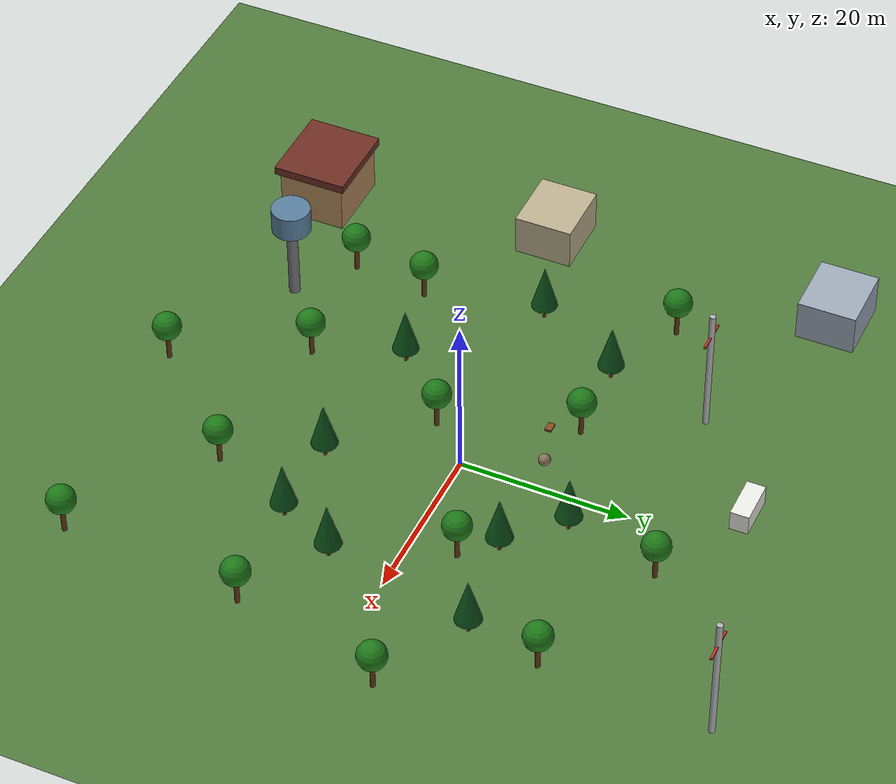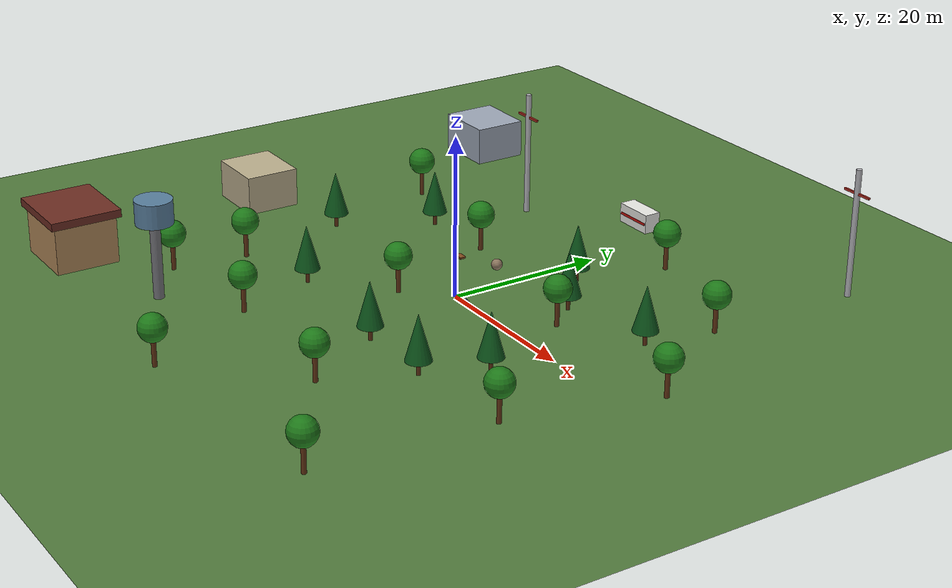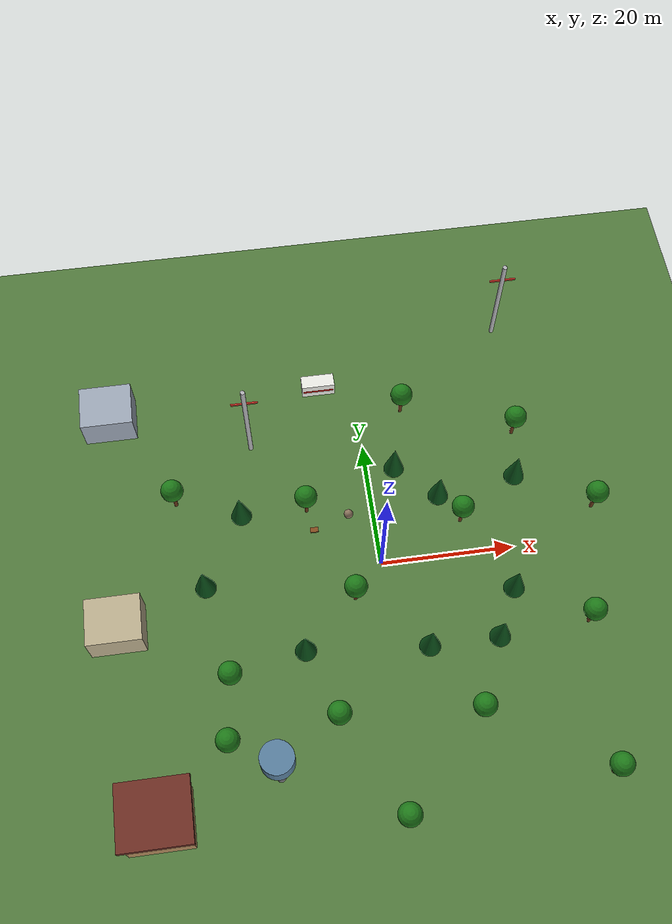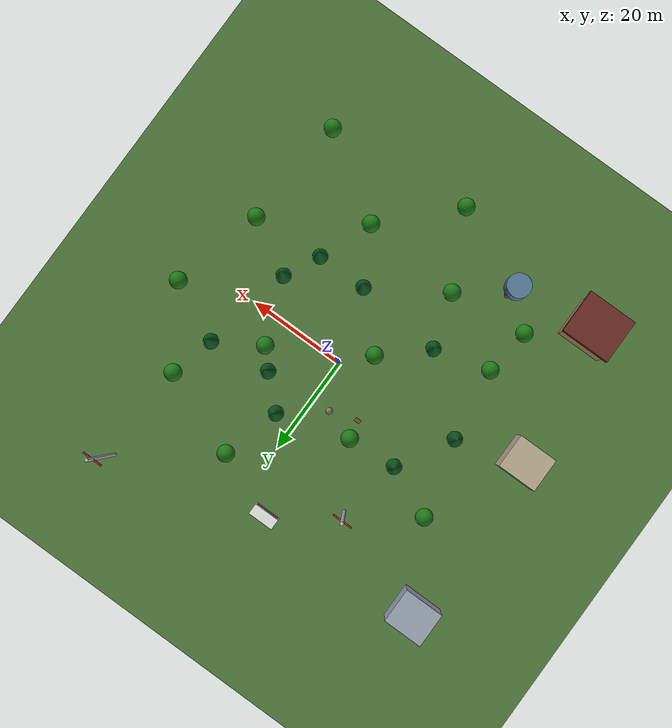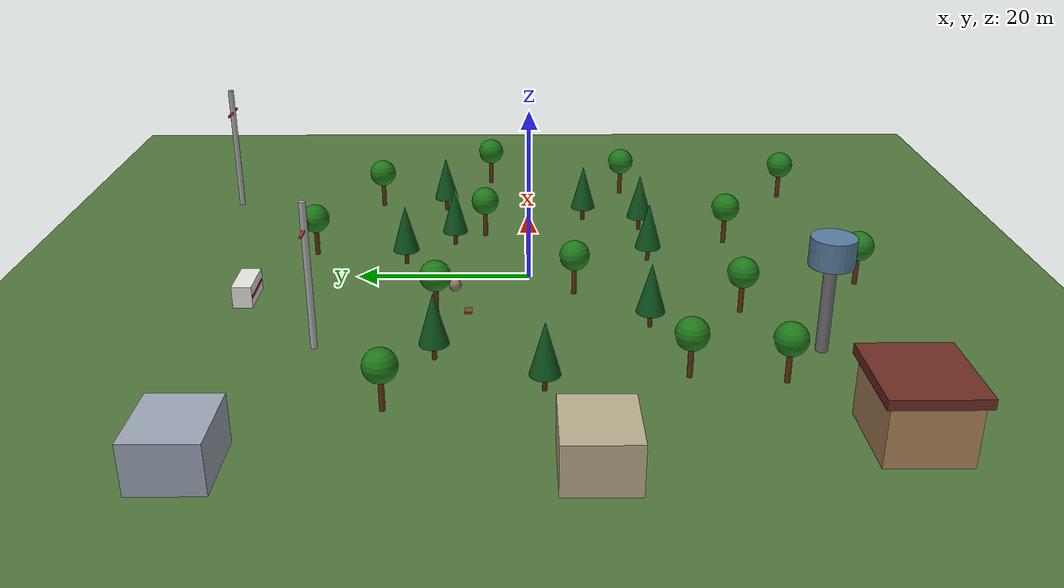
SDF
<sdf version="1.9">
 <world name="air_ground">
  <physics name="1ms" type="ignore">
   <max_step_size>0.001</max_step_size>
   <real_time_factor>1.0</real_time_factor>
  </physics>
  <plugin filename="gz-sim-physics-system" name="gz::sim::systems::Physics"/>
  <plugin filename="gz-sim-sensors-system" name="gz::sim::systems::Sensors">
   <render_engine>ogre2</render_engine>
  </plugin>
  <plugin filename="gz-sim-user-commands-system" name="gz::sim::systems::UserCommands"/>
  <plugin filename="gz-sim-scene-broadcaster-system" name="gz::sim::systems::SceneBroadcaster"/>
  <plugin filename="gz-sim-imu-system" name="gz::sim::systems::Imu"/>
  <plugin filename="gz-sim-navsat-system" name="gz::sim::systems::NavSat"/>
  <scene><ambient>0.72 0.76 0.72 1</ambient><background>0.48 0.67 0.83 1</background></scene>
  <spherical_coordinates>
   <latitude_deg>22.1350000</latitude_deg>
   <longitude_deg>113.5447296</longitude_deg>
   <elevation>10</elevation>
   <heading_deg>0</heading_deg>
   <surface_model>EARTH_WGS84</surface_model>
  </spherical_coordinates>
  <light type="directional" name="sun">
   <pose>0 0 30 0 0 0</pose>
   <diffuse>0.9 0.9 0.85 1</diffuse>
   <specular>0.2 0.2 0.2 1</specular>
   <direction>-0.45 0.25 -0.86</direction>
  </light>
  <model name="ground_plane">
   <static>true</static>
   <link name="link">
    <collision name="collision">
     <geometry><plane><normal>0 0 1</normal><size>110 110</size></plane></geometry>
    </collision>
    <visual name="visual">
     <geometry><plane><normal>0 0 1</normal><size>110 110</size></plane></geometry>
     <material><ambient>0.26 0.40 0.20 1</ambient><diffuse>0.32 0.48 0.24 1</diffuse></material>
    </visual>
   </link>
  </model>
  <include>
   <uri>model://astra_oak_tree</uri>
   <name>Oak_tree</name>
   <pose>-4.65578 -5.01823 0 0 0 0</pose>
  </include>
  <include>
   <uri>model://astra_oak_tree</uri>
   <name>Oak_tree_0</name>
   <pose>-10.0443 10.2228 0 0 0 0</pose>
  </include>
  <include>
   <uri>model://astra_oak_tree</uri>
   <name>Oak_tree_1</name>
   <pose>12.8892 5.49102 0 0 0 0</pose>
  </include>
  <include>
   <uri>model://astra_oak_tree</uri>
   <name>Oak_tree_2</name>
   <pose>-23.7091 -15.4511 0 0 0 0</pose>
  </include>
  <include>
   <uri>model://astra_oak_tree</uri>
   <name>Oak_tree_3</name>
   <pose>10.3696 -24.5563 0 0 0 0</pose>
  </include>
  <include>
   <uri>model://astra_oak_tree</uri>
   <name>Oak_tree_4</name>
   <pose>6.92386 25.9759 0 0 0 0</pose>
  </include>
  <include><uri>model://astra_oak_tree</uri><name>Oak_tree_5</name><pose>28.518 -12.988 0 0 0 0</pose></include>
  <include>
   <uri>model://astra_oak_tree</uri>
   <name>Oak_tree_6</name>
   <pose>-29.7502 13.8613 0 0 0 0</pose>
  </include>
  <include>
   <uri>model://astra_oak_tree</uri>
   <name>Oak_tree_7</name>
   <pose>-9.45771 -23.033 0 0 0 0</pose>
  </include>
  <include><uri>model://astra_oak_tree</uri><name>Oak_tree_8</name><pose>23.787 19.6562 0 0 0 0</pose></include>
  <include><uri>model://astra_oak_tree</uri><name>Oak_tree_9</name><pose>33.249 5.20517 0 0 0 0</pose></include>
  <include>
   <uri>model://astra_oak_tree</uri>
   <name>Oak_tree_10</name>
   <pose>-2.18436 -37.665 0 0 0 0</pose>
  </include>
  <include>
   <uri>model://astra_oak_tree</uri>
   <name>Oak_tree_11</name>
   <pose>26.8344 -34.9455 0 0 0 0</pose>
  </include>
  <include>
   <uri>model://astra_oak_tree</uri>
   <name>juniper_Tree</name>
   <pose>-24.8579 -24.746 0 0 0 0</pose>
  </include>
  <include>
   <uri>model://astra_pine_tree</uri>
   <name>Pine_Tree</name>
   <pose>9.97516 9.16049 0 0 0 0</pose>
  </include>
  <include>
   <uri>model://astra_pine_tree</uri>
   <name>Pine_Tree_0</name>
   <pose>-26.2144 -1.2501 0 0 0 0</pose>
  </include>
  <include>
   <uri>model://astra_pine_tree</uri>
   <name>Pine_Tree_1</name>
   <pose>-19.9547 9.71862 0 0 0 0</pose>
  </include>
  <include>
   <uri>model://astra_pine_tree</uri>
   <name>Pine_Tree_2</name>
   <pose>4.0396 14.7348 0 0 0 0</pose>
  </include>
  <include>
   <uri>model://astra_pine_tree</uri>
   <name>Pine_Tree_3</name>
   <pose>18.3644 -7.22322 0 0 0 0</pose>
  </include>
  <include>
   <uri>model://astra_pine_tree</uri>
   <name>Pine_Tree_4</name>
   <pose>-12.9054 -12.7386 0 0 0 0</pose>
  </include>
  <include>
   <uri>model://astra_pine_tree</uri>
   <name>Pine_Tree_5</name>
   <pose>4.71231 -14.3737 0 0 0 0</pose>
  </include>
  <include>
   <uri>model://astra_pine_tree</uri>
   <name>Pine_Tree_6</name>
   <pose>14.8743 -14.302 0 0 0 0</pose>
  </include>
  <include>
   <uri>model://astra_pine_tree</uri>
   <name>Pine_Tree_7</name>
   <pose>22.0901 10.9764 0 0 0 0</pose>
  </include>
  <model name="House_3">
   <pose>-35 -33.4664 0 0 0 0</pose>
   <static>true</static>
   <link name="building">
    <collision name="body_collision">
     <pose>0 0 3 0 0 0</pose>
     <geometry><box><size>9 8 6</size></box></geometry>
    </collision>
    <visual name="body">
     <pose>0 0 3 0 0 0</pose>
     <geometry><box><size>9 8 6</size></box></geometry>
     <material><ambient>0.58 0.42 0.28 1</ambient><diffuse>0.70 0.54 0.36 1</diffuse></material>
    </visual>
    <visual name="roof">
     <pose>0 0 6.5 0 0 0</pose>
     <geometry><box><size>10 9 1</size></box></geometry>
     <material><ambient>0.28 0.12 0.10 1</ambient><diffuse>0.43 0.18 0.14 1</diffuse></material>
    </visual>
   </link>
  </model>
  <model name="House_1">
   <pose>-39.4031 -5.493 0 0 0 0</pose>
   <static>true</static>
   <link name="building">
    <collision name="collision">
     <pose>0 0 2.5 0 0 0</pose>
     <geometry><box><size>8 7 5</size></box></geometry>
    </collision>
    <visual name="visual">
     <pose>0 0 2.5 0 0 0</pose>
     <geometry><box><size>8 7 5</size></box></geometry>
     <material><ambient>0.62 0.58 0.48 1</ambient><diffuse>0.74 0.69 0.56 1</diffuse></material>
    </visual>
   </link>
  </model>
  <model name="House_1_0">
   <pose>-39 30 0 0 0 0</pose>
   <static>true</static>
   <link name="building">
    <collision name="collision">
     <pose>0 0 2.5 0 0 0</pose>
     <geometry><box><size>8 7 5</size></box></geometry>
    </collision>
    <visual name="visual">
     <pose>0 0 2.5 0 0 0</pose>
     <geometry><box><size>8 7 5</size></box></geometry>
     <material><ambient>0.52 0.55 0.60 1</ambient><diffuse>0.62 0.66 0.72 1</diffuse></material>
    </visual>
   </link>
  </model>
  <model name="radio_tower">
   <pose>-17.4209 22.29 0 0 0 0</pose>
   <static>true</static>
   <link name="tower">
    <collision name="mast_collision">
     <pose>0 0 8 0 0 0</pose>
     <geometry><cylinder><radius>0.35</radius><length>16</length></cylinder></geometry>
    </collision>
    <visual name="mast">
     <pose>0 0 8 0 0 0</pose>
     <geometry><cylinder><radius>0.35</radius><length>16</length></cylinder></geometry>
     <material><ambient>0.55 0.55 0.58 1</ambient><diffuse>0.7 0.7 0.72 1</diffuse></material>
    </visual>
    <visual name="bar">
     <pose>0 0 13 0 0 0</pose>
     <geometry><box><size>4 0.25 0.25</size></box></geometry>
     <material><diffuse>0.8 0.2 0.15 1</diffuse></material>
    </visual>
   </link>
  </model>
  <model name="radio_tower_0">
   <pose>24.4614 39.3288 0 0 0 0</pose>
   <static>true</static>
   <link name="tower">
    <collision name="mast_collision">
     <pose>0 0 8 0 0 0</pose>
     <geometry><cylinder><radius>0.35</radius><length>16</length></cylinder></geometry>
    </collision>
    <visual name="mast">
     <pose>0 0 8 0 0 0</pose>
     <geometry><cylinder><radius>0.35</radius><length>16</length></cylinder></geometry>
     <material><ambient>0.55 0.55 0.58 1</ambient><diffuse>0.7 0.7 0.72 1</diffuse></material>
    </visual>
    <visual name="bar">
     <pose>0 0 13 0 0 0</pose>
     <geometry><box><size>4 0.25 0.25</size></box></geometry>
     <material><diffuse>0.8 0.2 0.15 1</diffuse></material>
    </visual>
   </link>
  </model>
  <model name="water_tower">
   <pose>-18.3559 -29.7161 0 0 0 0</pose>
   <static>true</static>
   <link name="tower">
    <collision name="column_collision">
     <pose>0 0 5 0 0 0</pose>
     <geometry><cylinder><radius>0.65</radius><length>10</length></cylinder></geometry>
    </collision>
    <collision name="tank_collision">
     <pose>0 0 11 0 0 0</pose>
     <geometry><cylinder><radius>2.3</radius><length>3</length></cylinder></geometry>
    </collision>
    <visual name="column">
     <pose>0 0 5 0 0 0</pose>
     <geometry><cylinder><radius>0.65</radius><length>10</length></cylinder></geometry>
     <material><diffuse>0.45 0.45 0.47 1</diffuse></material>
    </visual>
    <visual name="tank">
     <pose>0 0 11 0 0 0</pose>
     <geometry><cylinder><radius>2.3</radius><length>3</length></cylinder></geometry>
     <material><diffuse>0.35 0.50 0.62 1</diffuse></material>
    </visual>
   </link>
  </model>
  <model name="ambulance">
   <pose>-5.62287 31.7253 0 0 0 0</pose>
   <static>true</static>
   <link name="body">
    <collision name="collision">
     <pose>0 0 1.25 0 0 0</pose>
     <geometry><box><size>5.2 2.2 2.5</size></box></geometry>
    </collision>
    <visual name="visual">
     <pose>0 0 1.25 0 0 0</pose>
     <geometry><box><size>5.2 2.2 2.5</size></box></geometry>
     <material><diffuse>0.92 0.92 0.90 1</diffuse></material>
    </visual>
    <visual name="stripe">
     <pose>0 -1.11 1.2 0 0 0</pose>
     <geometry><box><size>4.8 0.03 0.35</size></box></geometry>
     <material><diffuse>0.8 0.08 0.06 1</diffuse></material>
    </visual>
   </link>
  </model>
  <model name="euro_pallet">
   <pose>-9.31039 6.75911 0 0 0 0</pose>
   <static>true</static>
   <link name="pallet">
    <collision name="collision">
     <pose>0 0 0.12 0 0 0</pose>
     <geometry><box><size>1.2 0.8 0.24</size></box></geometry>
    </collision>
    <visual name="visual">
     <pose>0 0 0.12 0 0 0</pose>
     <geometry><box><size>1.2 0.8 0.24</size></box></geometry>
     <material><diffuse>0.52 0.30 0.12 1</diffuse></material>
    </visual>
   </link>
  </model>
  <model name="coral01">
   <pose>-3.82746 8.48135 0 0 0 0</pose>
   <static>true</static>
   <link name="rock">
    <collision name="collision">
     <pose>0 0 0.7 0 0 0</pose>
     <geometry><sphere><radius>0.7</radius></sphere></geometry>
    </collision>
    <visual name="visual">
     <pose>0 0 0.7 0 0 0</pose>
     <geometry><sphere><radius>0.7</radius></sphere></geometry>
     <material><diffuse>0.55 0.46 0.37 1</diffuse></material>
    </visual>
   </link>
  </model>
  <include>
   <uri>model://ground_vehicle</uri>
   <name>ground_vehicle</name>
   <pose>2.0 0 0 0 0 3.14159265359</pose>
  </include>
 </world>
</sdf>

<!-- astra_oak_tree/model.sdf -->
<sdf version="1.9">
  <model name="astra_oak_tree">
    <static>true</static>
    <link name="tree">
      <collision name="trunk_collision">
        <pose>0 0 2 0 0 0</pose>
        <geometry><cylinder><radius>0.28</radius><length>4</length></cylinder></geometry>
      </collision>
      <visual name="trunk_visual">
        <pose>0 0 2 0 0 0</pose>
        <geometry><cylinder><radius>0.28</radius><length>4</length></cylinder></geometry>
        <material><ambient>0.28 0.13 0.05 1</ambient><diffuse>0.38 0.20 0.08 1</diffuse></material>
      </visual>
      <collision name="crown_collision">
        <pose>0 0 4.7 0 0 0</pose>
        <geometry><sphere><radius>1.7</radius></sphere></geometry>
      </collision>
      <visual name="crown_visual">
        <pose>0 0 4.7 0 0 0</pose>
        <geometry><sphere><radius>1.7</radius></sphere></geometry>
        <material><ambient>0.08 0.30 0.07 1</ambient><diffuse>0.12 0.48 0.10 1</diffuse></material>
      </visual>
    </link>
  </model>
</sdf>

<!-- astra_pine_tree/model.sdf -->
<sdf version="1.9">
  <model name="astra_pine_tree">
    <static>true</static>
    <link name="tree">
      <collision name="trunk_collision">
        <pose>0 0 2.5 0 0 0</pose>
        <geometry><cylinder><radius>0.24</radius><length>5</length></cylinder></geometry>
      </collision>
      <visual name="trunk_visual">
        <pose>0 0 2.5 0 0 0</pose>
        <geometry><cylinder><radius>0.24</radius><length>5</length></cylinder></geometry>
        <material><ambient>0.26 0.13 0.05 1</ambient><diffuse>0.35 0.18 0.07 1</diffuse></material>
      </visual>
      <collision name="crown_collision">
        <pose>0 0 4.5 0 0 0</pose>
        <geometry><cone><radius>1.55</radius><length>5.5</length></cone></geometry>
      </collision>
      <visual name="crown_visual">
        <pose>0 0 4.5 0 0 0</pose>
        <geometry><cone><radius>1.55</radius><length>5.5</length></cone></geometry>
        <material><ambient>0.04 0.20 0.08 1</ambient><diffuse>0.05 0.34 0.11 1</diffuse></material>
      </visual>
    </link>
  </model>
</sdf>

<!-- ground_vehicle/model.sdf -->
<sdf version="1.9">
  <model name="ground_vehicle">
    <pose>0 0 0 0 0 0</pose>

    <link name="base_link">
      <!-- Keep the body collision 40 mm above the ground so the wheels, not
           the chassis belly, carry the vehicle and generate traction. -->
      <pose>0 0 0.30 0 0 0</pose>
      <inertial>
        <mass>18.0</mass>
        <inertia>
          <ixx>0.65</ixx><iyy>1.10</iyy><izz>1.35</izz>
        </inertia>
      </inertial>
      <collision name="body_collision">
        <geometry><box><size>0.82 0.54 0.18</size></box></geometry>
      </collision>
      <visual name="body_visual">
        <geometry><box><size>0.82 0.54 0.18</size></box></geometry>
        <material>
          <ambient>0.05 0.18 0.28 1</ambient>
          <diffuse>0.08 0.32 0.48 1</diffuse>
        </material>
      </visual>
      <visual name="landing_pad">
        <pose>0 0 0.105 0 0 0</pose>
        <geometry><box><size>0.40 0.40 0.018</size></box></geometry>
        <material>
          <ambient>0.75 0.75 0.75 1</ambient>
          <diffuse>0.85 0.85 0.85 1</diffuse>
        </material>
      </visual>
      <!-- Physical target shown in the supplied reference photo:
           tag36h11 ID 0, 200 mm black edge plus a 25 mm white quiet
           border on every side, for a 250 x 250 mm printed board. -->
      <visual name="apriltag_id0">
        <pose>0 0 0.115 0 0 0</pose>
        <geometry><plane><normal>0 0 1</normal><size>0.25 0.25</size></plane></geometry>
        <material>
          <ambient>1 1 1 1</ambient>
          <diffuse>1 1 1 1</diffuse>
          <specular>0 0 0 1</specular>
          <pbr>
            <metal>
              <albedo_map>model://ground_vehicle/materials/textures/tag36h11_id0.png</albedo_map>
              <metalness>0.0</metalness>
              <roughness>1.0</roughness>
            </metal>
          </pbr>
        </material>
      </visual>
    </link>

    <link name="left_front_wheel">
      <pose>0.30 0.33 0.17 1.57079632679 0 0</pose>
      <inertial><mass>1.0</mass><inertia><ixx>0.015</ixx><iyy>0.015</iyy><izz>0.025</izz></inertia></inertial>
      <collision name="collision"><geometry><cylinder><radius>0.17</radius><length>0.08</length></cylinder></geometry><surface><friction><ode><mu>1.2</mu><mu2>1.2</mu2></ode></friction></surface></collision>
      <visual name="visual"><geometry><cylinder><radius>0.17</radius><length>0.08</length></cylinder></geometry><material><ambient>0.03 0.03 0.03 1</ambient><diffuse>0.06 0.06 0.06 1</diffuse></material></visual>
    </link>
    <link name="left_rear_wheel">
      <pose>-0.30 0.33 0.17 1.57079632679 0 0</pose>
      <inertial><mass>1.0</mass><inertia><ixx>0.015</ixx><iyy>0.015</iyy><izz>0.025</izz></inertia></inertial>
      <collision name="collision"><geometry><cylinder><radius>0.17</radius><length>0.08</length></cylinder></geometry><surface><friction><ode><mu>1.2</mu><mu2>1.2</mu2></ode></friction></surface></collision>
      <visual name="visual"><geometry><cylinder><radius>0.17</radius><length>0.08</length></cylinder></geometry><material><ambient>0.03 0.03 0.03 1</ambient><diffuse>0.06 0.06 0.06 1</diffuse></material></visual>
    </link>
    <link name="right_front_wheel">
      <pose>0.30 -0.33 0.17 1.57079632679 0 0</pose>
      <inertial><mass>1.0</mass><inertia><ixx>0.015</ixx><iyy>0.015</iyy><izz>0.025</izz></inertia></inertial>
      <collision name="collision"><geometry><cylinder><radius>0.17</radius><length>0.08</length></cylinder></geometry><surface><friction><ode><mu>1.2</mu><mu2>1.2</mu2></ode></friction></surface></collision>
      <visual name="visual"><geometry><cylinder><radius>0.17</radius><length>0.08</length></cylinder></geometry><material><ambient>0.03 0.03 0.03 1</ambient><diffuse>0.06 0.06 0.06 1</diffuse></material></visual>
    </link>
    <link name="right_rear_wheel">
      <pose>-0.30 -0.33 0.17 1.57079632679 0 0</pose>
      <inertial><mass>1.0</mass><inertia><ixx>0.015</ixx><iyy>0.015</iyy><izz>0.025</izz></inertia></inertial>
      <collision name="collision"><geometry><cylinder><radius>0.17</radius><length>0.08</length></cylinder></geometry><surface><friction><ode><mu>1.2</mu><mu2>1.2</mu2></ode></friction></surface></collision>
      <visual name="visual"><geometry><cylinder><radius>0.17</radius><length>0.08</length></cylinder></geometry><material><ambient>0.03 0.03 0.03 1</ambient><diffuse>0.06 0.06 0.06 1</diffuse></material></visual>
    </link>

    <!-- Joint axes are expressed in each rotated wheel frame.  Local Z is the
         axle direction after the 90-degree wheel-link roll. -->
    <joint name="left_front_joint" type="revolute">
      <parent>base_link</parent><child>left_front_wheel</child>
      <axis><xyz>0 0 1</xyz><limit><lower>-1.0e16</lower><upper>1.0e16</upper></limit></axis>
    </joint>
    <joint name="left_rear_joint" type="revolute">
      <parent>base_link</parent><child>left_rear_wheel</child>
      <axis><xyz>0 0 1</xyz><limit><lower>-1.0e16</lower><upper>1.0e16</upper></limit></axis>
    </joint>
    <joint name="right_front_joint" type="revolute">
      <parent>base_link</parent><child>right_front_wheel</child>
      <axis><xyz>0 0 1</xyz><limit><lower>-1.0e16</lower><upper>1.0e16</upper></limit></axis>
    </joint>
    <joint name="right_rear_joint" type="revolute">
      <parent>base_link</parent><child>right_rear_wheel</child>
      <axis><xyz>0 0 1</xyz><limit><lower>-1.0e16</lower><upper>1.0e16</upper></limit></axis>
    </joint>

    <plugin filename="gz-sim-diff-drive-system" name="gz::sim::systems::DiffDrive">
      <left_joint>left_front_joint</left_joint>
      <left_joint>left_rear_joint</left_joint>
      <right_joint>right_front_joint</right_joint>
      <right_joint>right_rear_joint</right_joint>
      <wheel_separation>0.66</wheel_separation>
      <wheel_radius>0.17</wheel_radius>
      <topic>/model/ground_vehicle/cmd_vel</topic>
      <odom_topic>/model/ground_vehicle/odometry</odom_topic>
      <tf_topic>/model/ground_vehicle/tf</tf_topic>
      <frame_id>odom</frame_id>
      <child_frame_id>ugv_base_link</child_frame_id>
      <odom_publish_frequency>30</odom_publish_frequency>
      <max_linear_acceleration>1.0</max_linear_acceleration>
      <max_angular_acceleration>1.5</max_angular_acceleration>
    </plugin>
  </model>
</sdf>
